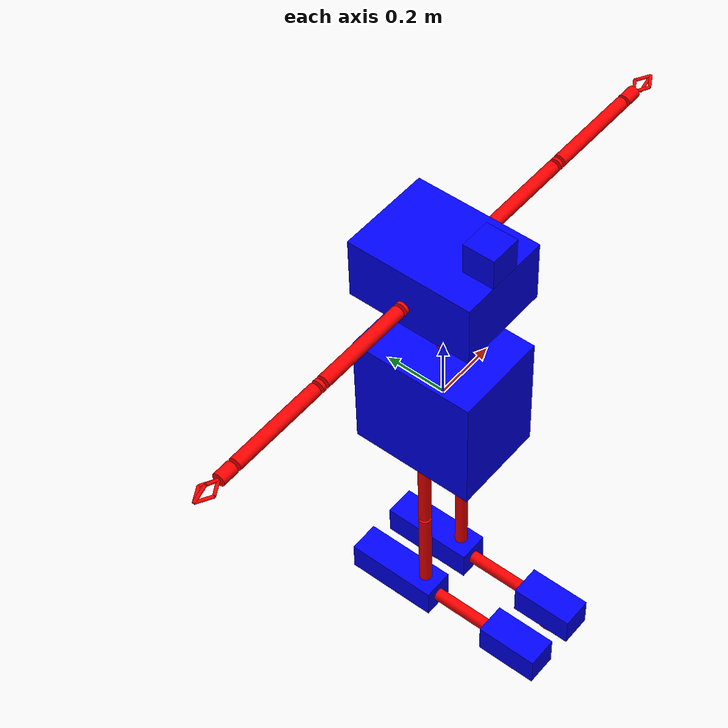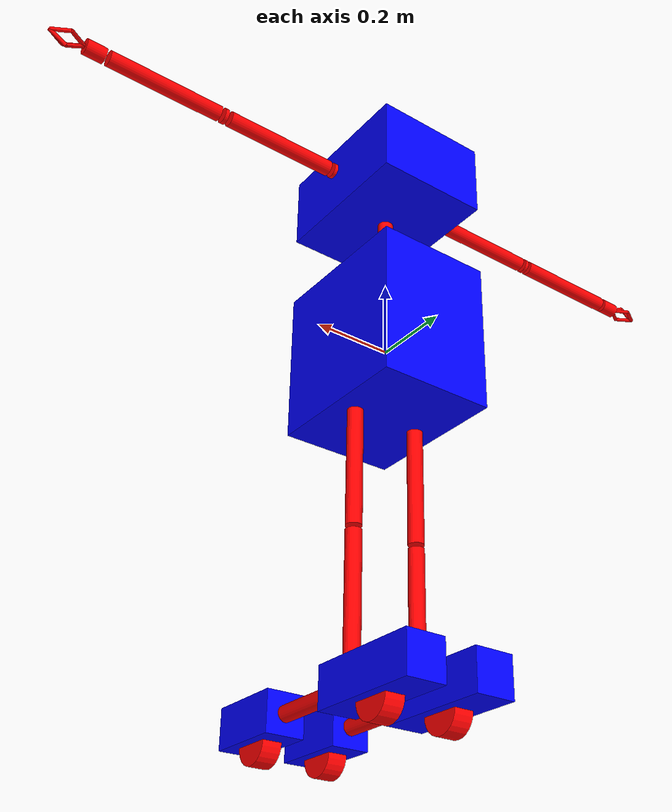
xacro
<?xml version="1.0"?>
<robot xmlns:xacro="http://www.ros.org/wiki/xacro" name="firefighter">
    <!-- MATERIALS    -->
    <xacro:macro name="color" params="name rgba">
        <material name="${name}">
            <color rgba="${rgba}" />
        </material>
    </xacro:macro>
    <!-- correct colors   -->
    <xacro:color name="aluminium" rgba="1 0 0 1"/>
    <xacro:color name="blue" rgba="0 0 1 1"/>
    <xacro:color name="black" rgba="1 0 0 1"/>
    <!--    COMMON DEFINITION-->
    <xacro:macro name="expandable" params="name">
        <link name="${name}">
            <xacro:macro name="expandable_geometry">
                <geometry>
                    <cylinder length="0.2" radius="0.02"/>
                </geometry>
                <origin xyz="0 0 ${-0.2/2}"/>
            </xacro:macro>
            <visual>
                <xacro:expandable_geometry/>
                <material name="aluminium"/>
            </visual>
            <collision>
                <xacro:expandable_geometry/>
            </collision>
            <intertial>
                <mass value="0.2"/>
            </intertial>
        </link>
    </xacro:macro>

    <xacro:macro name="pipe" params="name length radius=0.02 spin=-1">
        <link name="${name}">
            <xacro:macro name="pipe_geometry">
                <geometry>
                    <cylinder length="${length}" radius="${radius}"/>
                </geometry>
                <origin xyz="0 0 ${spin*length/2}"/>
            </xacro:macro>
            <visual>
                <xacro:pipe_geometry/>
                <material name="aluminium"/>
            </visual>
            <collision>
                <xacro:pipe_geometry/>
            </collision>
             <intertial>
                <mass value="${0.1*length}"/>
            </intertial>
        </link>
    </xacro:macro>

    <xacro:macro name="wheel" params="name">
        <link name="${name}">
            <xacro:macro name="wheel_geometry">
                <geometry>
                    <cylinder length="0.05" radius="0.05"/>
                </geometry>
            </xacro:macro>
            <visual>
                <xacro:wheel_geometry/>
                <material name="black"/>
            </visual>
            <collision>
                <xacro:wheel_geometry/>
            </collision>
             <intertial>
                <mass value="0.2"/>
            </intertial>
        </link>
    </xacro:macro>

    <!-- The base of the robot. All other parts including legs and extendable upper body is attached to the base.
       Base contains the battery and the main computer and is the haviest part of the robot. -->
    <link name="base_link">
        <xacro:macro name="base_link_geometry">
            <geometry>
                <box size="0.3 0.4 0.4"></box>
            </geometry>
        </xacro:macro>
        <visual>
            <xacro:base_link_geometry/>
            <material name="blue"/>
        </visual>
        <collision>
            <xacro:base_link_geometry/>
        </collision>
         <intertial>
            <mass value="15"/>
        </intertial>
    </link>

    <!-- expandable for upper body    -->
    <xacro:expandable name="expandable_from_base_link_to_upper_body"/>
    <joint name="base_link_to_expandable_to_upper_body" type="fixed">
        <parent link="base_link"/>
        <child link="expandable_from_base_link_to_upper_body"/>
        <origin xyz="0 0 0.4 "/>
    </joint>

    <!-- upper body    -->
    <link name="upper_body_link">
        <xacro:macro name="upper_body_geometry">
            <geometry>
                <box size="0.3 0.4 0.2"></box>
            </geometry>
        </xacro:macro>
        <visual>
            <xacro:upper_body_geometry/>
            <material name="blue"/>
        </visual>
        <collision>
            <xacro:upper_body_geometry/>
        </collision>
         <intertial>
            <mass value="4"/>
        </intertial>
    </link>
    <joint name="expandable_from_base_link_to_upper_body_to_upper_body" type="prismatic">
         <axis xyz="0 0 1"/>
         <limit effort="1000.0" lower="-0.1" upper="1.2" velocity="0.5"/>
        <parent link="expandable_from_base_link_to_upper_body"/>
        <child link="upper_body_link"/>
        <origin xyz="0 0 0.1"/>
    </joint>

    <!-- legs    -->
    <xacro:macro name="leg" params="position parent x_shift z_shift">
        <!-- hip       -->
        <xacro:pipe name="${position}_leg_hip" length="0.3"/>
        <joint name="${parent}_to_${position}_leg_hip" type="revolute">
            <axis xyz="1 0 0"/>
            <limit effort="1000.0" lower="-1.5708" upper="1.5708" velocity="0.5"/>
            <parent link="${parent}"/>
            <child link="${position}_leg_hip"/>
            <origin xyz="${x_shift} 0 ${z_shift}"/>
        </joint>

        <!-- ankle        -->
        <xacro:pipe name="${position}_leg_ankle" length="0.3"/>
        <joint name="${position}_leg_hip_to_${position}_leg_ankle" type="revolute">
            <axis xyz="1 0 0"/>
            <limit effort="1000.0" lower="-1.5708" upper="1.5708" velocity="0.5"/>
            <parent link="${position}_leg_hip"/>
            <child link="${position}_leg_ankle"/>
            <origin xyz="0 0 -0.31"/>
        </joint>

        <!-- foot heel-->
        <link name="${position}_foot_heel">
            <xacro:macro name="foot_heel_geometry">
                <geometry>
                    <box size="0.1 0.3 0.1"></box>
                </geometry>
                <origin xyz="0 0 -0.05"/>
            </xacro:macro>
            <visual>
                <xacro:foot_heel_geometry/>
                <material name="blue"/>
            </visual>
            <collision>
                <xacro:foot_heel_geometry/>
            </collision>
             <intertial>
                <mass value="0.5"/>
            </intertial>
        </link>
        <joint name="${position}_leg_ankle_to_${position}_foot_heel" type="fixed">
            <parent link="${position}_leg_ankle"/>
            <child link="${position}_foot_heel"/>
            <origin xyz="0 0.1 -0.31"/>
        </joint>
        <xacro:expandable name="${position}_foot_extendable"/>
        <joint name="${position}_foot_heel_to_${position}_foot_extendable" type="fixed">
            <parent link="${position}_foot_heel"/>
            <child link="${position}_foot_extendable"/>
            <origin xyz="0 -0.35 -0.05" rpy="1.5708 0 0"/>
        </joint>
        <!-- foot ball-->
        <link name="${position}_foot_ball">
            <xacro:macro name="foot_ball_geometry">
                <geometry>
                    <box size="0.1 0.2 0.1"></box>
                </geometry>
                <origin xyz="0 0 0.05"/>
            </xacro:macro>
            <visual>
                <xacro:foot_ball_geometry/>
                <material name="blue"/>
            </visual>
            <collision>
                <xacro:foot_ball_geometry/>
            </collision>
             <intertial>
                <mass value="0.5"/>
            </intertial>
        </link>
        <joint name="${position}_foot_extendable_to_${position}_foot_ball" type="prismatic">
            <axis xyz="0 1 0"/>
            <limit effort="1000.0" lower="-0.1" upper="0.5" velocity="0.5"/>
            <parent link="${position}_foot_extendable"/>
            <child link="${position}_foot_ball"/>
            <!--  move rpy to the actual part instead of the joint           -->
            <origin xyz="0 0.05 0.1" rpy="1.5708 0 0"/>
        </joint>
        <!-- rear wheel        -->
        <xacro:wheel name="${position}_rear_wheel"/>
        <joint name="${position}_foot_heel_to_${position}_rear_wheel" type="continuous">
            <axis xyz="0 0 1"/>
            <parent link="${position}_foot_heel"/>
            <child link="${position}_rear_wheel"/>
            <!--  move rpy to the actual part instead of the joint           -->
            <origin xyz="0 0 -0.1" rpy="0 1.5708 0"/>
        </joint>

        <!-- front wheel        -->
        <xacro:wheel name="${position}_front_wheel"/>
        <joint name="${position}_foot_ball_to_${position}_front_wheel" type="continuous">
            <axis xyz="0 0 1"/>
            <parent link="${position}_foot_ball"/>
            <child link="${position}_front_wheel"/>
            <!--  move rpy to the actual part instead of the joint           -->
            <origin xyz="0 0 0.1" rpy="0 1.5708 0"/>
        </joint>
    </xacro:macro>
    <xacro:leg position="left" parent="base_link" x_shift="0.09" z_shift="-0.2"/>
    <xacro:leg position="right" parent="base_link" x_shift="-0.09" z_shift="-0.2"/>

    <!-- arms    -->
    <xacro:macro name="arm" params="position parent x_shift spin pitch=0">
        <!-- shoulder        -->
        <xacro:pipe name="${position}_arm_shoulder_x" length="0.01" spin="1"/>
        <joint name="${parent}_to_${position}_arm_shoulder_x" type="revolute">
            <axis xyz="1 0 0"/>
            <limit effort="1000.0" lower="-1.5708" upper="1.5708" velocity="0.5"/>
            <parent link="${parent}"/>
            <child link="${position}_arm_shoulder_x"/>
            <origin xyz="${x_shift} 0 0" rpy="1.5708 ${pitch} ${spin*1.5708}"/>
        </joint>
        <xacro:pipe name="${position}_arm_shoulder_y" length="0.3" spin="1"/>
        <joint name="${position}_arm_shoulder_x_to_${position}_arm_shoulder_y" type="revolute">
            <axis xyz="0 1 0"/>
            <limit effort="1000.0" lower="-1.5708" upper="1.5708" velocity="0.5"/>
            <parent link="${position}_arm_shoulder_x"/>
            <child link="${position}_arm_shoulder_y"/>
            <origin xyz="0 0 0.02"/>
        </joint>

        <!-- writs        -->
        <xacro:pipe name="${position}_arm_wrist_x" length="0.01" spin="1"/>
        <joint name="${position}_arm_shoulder_y_to_${position}_arm_wrist_x" type="revolute">
            <axis xyz="1 0 0"/>
            <limit effort="1000.0" lower="-1.5708" upper="1.5708" velocity="0.5"/>
            <parent link="${position}_arm_shoulder_y"/>
            <child link="${position}_arm_wrist_x"/>
            <origin xyz="0 0 0.31"/>
        </joint>
        <xacro:pipe name="${position}_arm_wrist_y" length="0.3" spin="1"/>
        <joint name="${position}_arm_wrist_x_to_${position}_arm_wrist_y" type="revolute">
            <axis xyz="0 1 0"/>
            <limit effort="1000.0" lower="-1.5708" upper="1.5708" velocity="0.5"/>
            <parent link="${position}_arm_wrist_x"/>
            <child link="${position}_arm_wrist_y"/>
            <origin xyz="0 0 0.02"/>
        </joint>

        <!-- palms        -->
        <xacro:pipe name="${position}_arm_palm" length="0.05" spin="1"/>
        <joint name="${position}_arm_wrist_y_to_${position}_arm_palm" type="continuous">
            <axis xyz="0 0 1"/>
            <parent link="${position}_arm_wrist_y"/>
            <child link="${position}_arm_palm"/>
            <origin xyz="0 0 0.31"/>
        </joint>

        <!-- gripper        -->
        <xacro:macro name="gripper" params="arm_position gripper_position parent yaw=0">
            <!-- top knuckle           -->
            <xacro:pipe name="${arm_position}_arm_${gripper_position}_gripper_top_knuckle" length="0.05" radius="0.005" spin="1"/>
           <joint name="${parent}_${arm_position}_arm_${gripper_position}_gripper_top_knuckle" type="revolute">
                <axis xyz="0 1 0"/>
                <limit effort="1000.0" lower="0" upper="1.5708" velocity="0.5"/>
                <parent link="${parent}"/>
                <child link="${arm_position}_arm_${gripper_position}_gripper_top_knuckle"/>
                <origin xyz="0 0 0.05" rpy="0 0.523599 ${yaw}"/>
            </joint>

            <!-- bottom knuckle           -->
            <xacro:pipe name="${arm_position}_arm_${gripper_position}_gripper_middle_knuckle" length="0.05" radius="0.005" spin="1"/>
           <joint name="${arm_position}_arm_${gripper_position}_gripper_top_knuckle_to_${arm_position}_arm_${gripper_position}_gripper_middle_knuckle" type="fixed">
                <parent link="${arm_position}_arm_${gripper_position}_gripper_top_knuckle"/>
                <child link="${arm_position}_arm_${gripper_position}_gripper_middle_knuckle"/>
                <origin xyz="0 0 0.05" rpy="0 -1.047201225112 0"/>
            </joint>
        </xacro:macro>
        <xacro:gripper parent="${position}_arm_palm" arm_position="${position}" gripper_position="left"  />
        <xacro:gripper parent="${position}_arm_palm" arm_position="${position}" gripper_position="right" yaw="3.14159"/>
        <xacro:gripper parent="${position}_arm_palm" arm_position="${position}" gripper_position="bottom" yaw="-1.5708"/>
    </xacro:macro>
    <xacro:arm position="left" parent="upper_body_link" x_shift="0.17" spin="1"/>
    <xacro:arm position="right" parent="upper_body_link" x_shift="-0.17" spin="-1" pitch="3.14159"/>

    <!-- camera box   -->
    <link name="camera_box">
         <xacro:macro name="camera_box_geometry">
            <geometry>
                <box size="0.1 0.1 0.1"></box>
            </geometry>
             <origin xyz="0 -0.05 0.05"/>
        </xacro:macro>
        <visual>
            <xacro:camera_box_geometry/>
            <material name="blue"/>
        </visual>
        <collision>
            <xacro:camera_box_geometry/>
        </collision>
         <intertial>
            <mass value="1"/>
        </intertial>
    </link>
    <joint name="upper_body_link_to_camera_box" type="continuous">
        <axis xyz="0 0 1"/>
        <parent link="upper_body_link"/>
        <child link="camera_box"/>
        <origin xyz="0 -0.1 0.1"/>
    </joint>
</robot>
